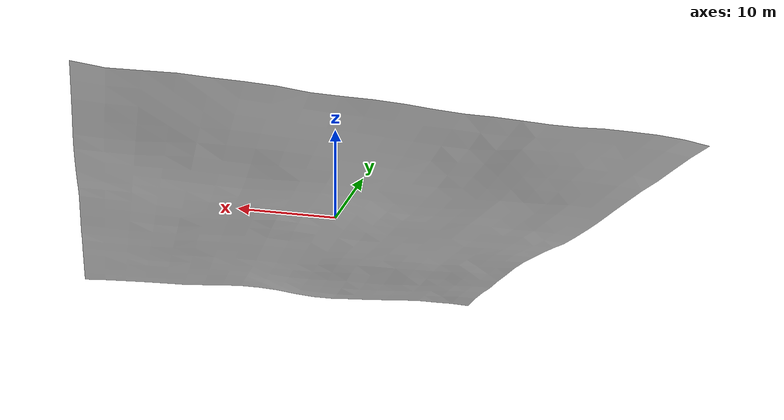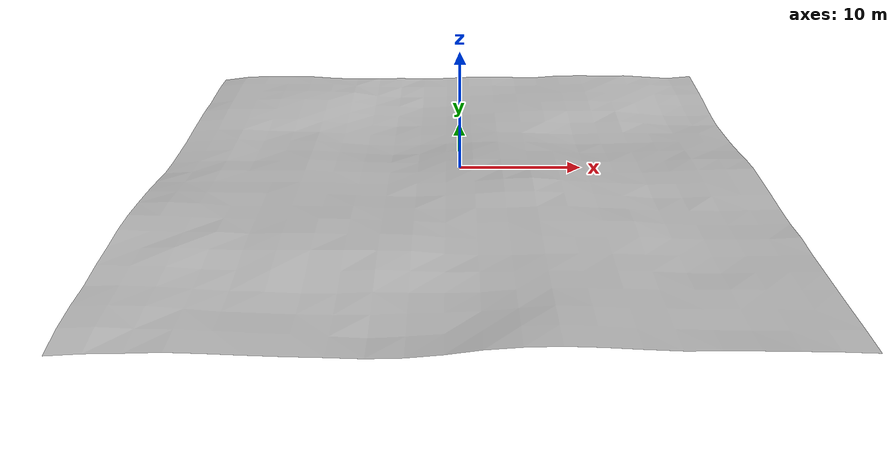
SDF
<?xml version='2.0'?>
<sdf version="1.6">
  <model name="uneven_terrain">
    <static>true</static>
    <link name="uneven_terrain_link">
      <pose>0.0 0.0 0.0 0 0 0</pose>
      <collision name="uneven_terrain_collision">
        <geometry>
          <mesh>
            <uri>model://meshes/uneven_terrain_2.dae</uri>
            <scale>1 1 1</scale>
          </mesh>
        </geometry>
      </collision>
      <visual name="uneven_terrain_visual">
        <geometry>
          <mesh>
            <uri>model://meshes/uneven_terrain_2.dae</uri>
            <scale>1 1 1</scale>
          </mesh>
        </geometry>
      </visual>
    </link>
  </model>
</sdf>
